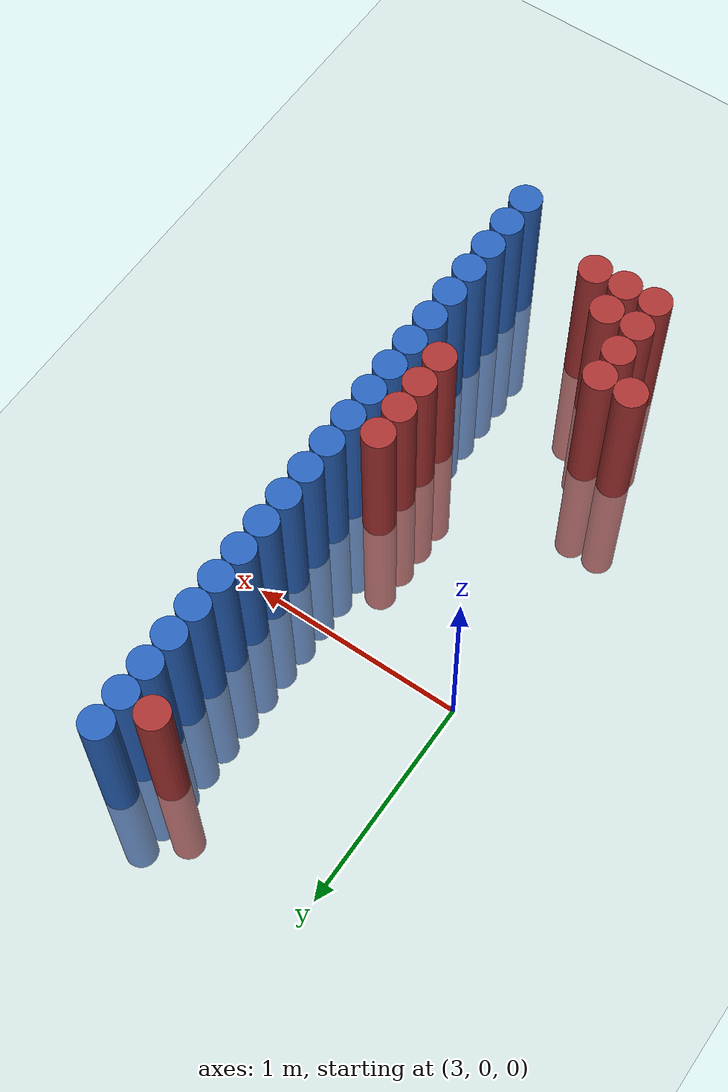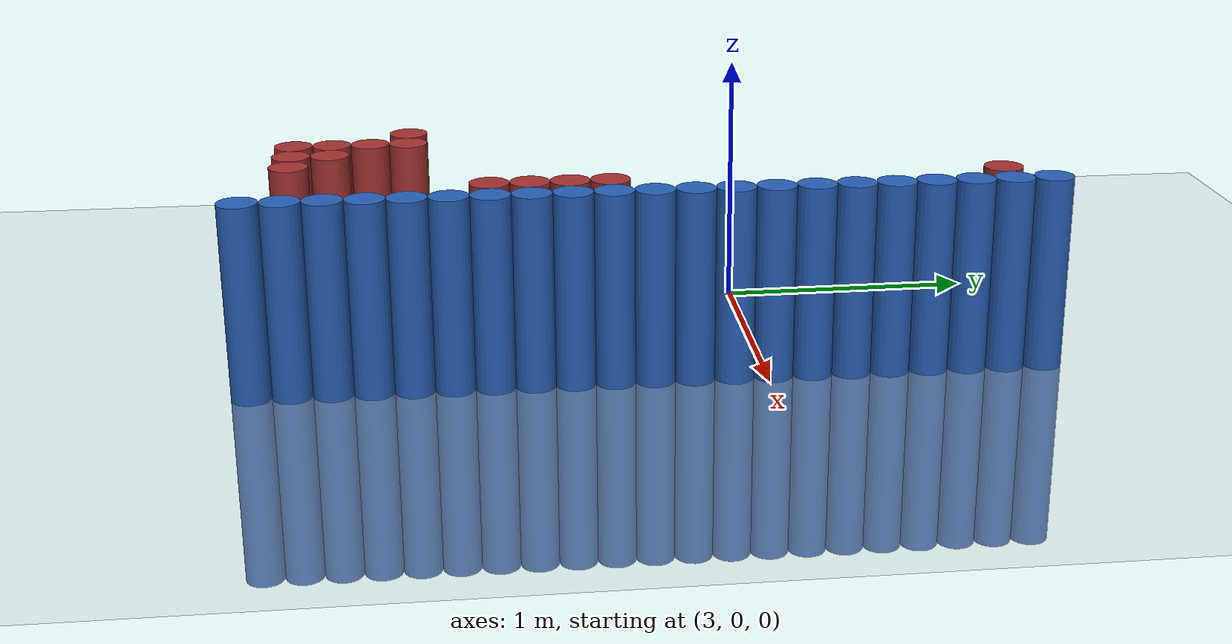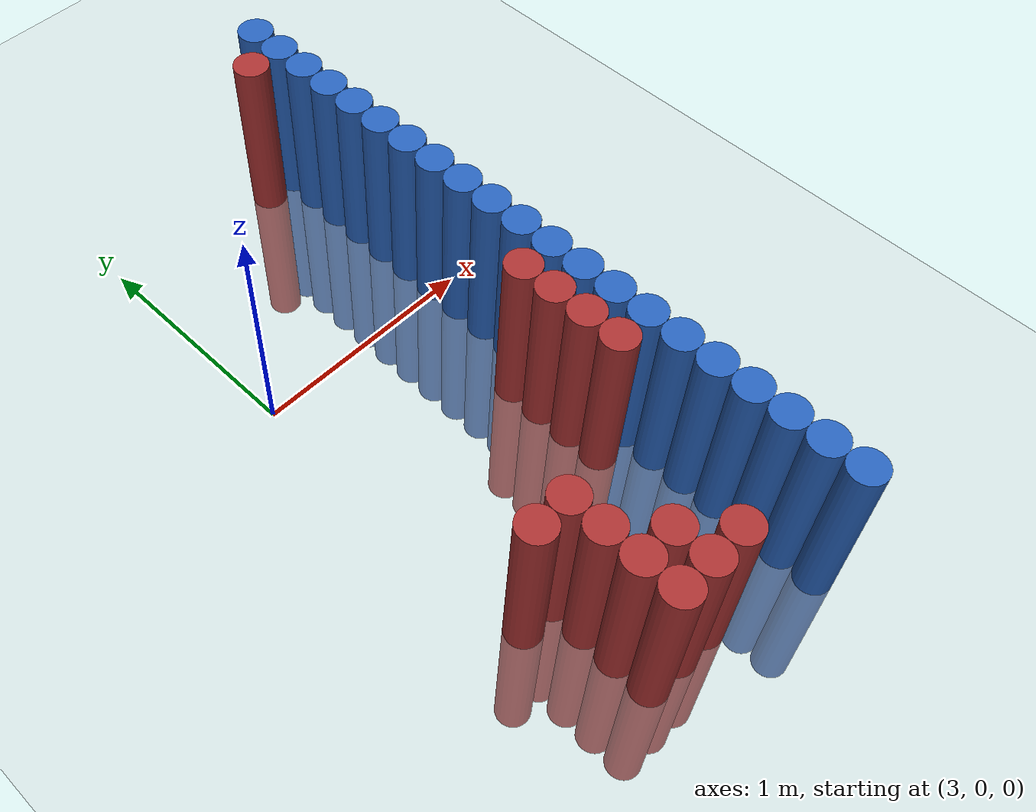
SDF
<sdf version="1.6">
 <world name="default">
  <model name="ground_plane">
   <static>1</static>
   <link name="link">
    <collision name="collision">
     <geometry><plane><normal>0 0 1</normal><size>100 100</size></plane></geometry>
     <surface><friction><ode><mu>100</mu><mu2>50</mu2></ode></friction></surface>
    </collision>
    <visual name="visual">
     <cast_shadows>0</cast_shadows>
     <geometry><plane><normal>0 0 1</normal><size>100 100</size></plane></geometry>
     <material>
      <script><uri>file://media/materials/scripts/gazebo.material</uri><name>Gazebo/Grey</name></script>
     </material>
    </visual>
   </link>
  </model>
  <model name="unit_cylinder_88">
   <static>1</static>
   <pose>3.925000 -1.925000 0.000000 0.000000 0.000000 0.000000</pose>
   <link name="link">
    <inertial>
     <mass>1</mass>
     <inertia><ixx>0.145833</ixx><ixy>0</ixy><ixz>0</ixz><iyy>0.145833</iyy><iyz>0</iyz><izz>0.125</izz></inertia>
    </inertial>
    <collision name="collision">
     <geometry><cylinder><radius>0.075000</radius><length>1.5</length></cylinder></geometry>
    </collision>
    <visual name="visual">
     <geometry><cylinder><radius>0.075000</radius><length>1.5</length></cylinder></geometry>
     <material>
      <ambient>0.152000 0.379000 0.720000 1</ambient>
      <diffuse>0.152000 0.379000 0.720000 1</diffuse>
     </material>
     <material>
      <script><name>Gazebo/Grey</name><uri>file://media/materials/scripts/gazebo.material</uri></script>
     </material>
    </visual>
   </link>
  </model>
  <model name="unit_cylinder_90">
   <static>1</static>
   <pose>3.925000 -1.775000 0.000000 0.000000 0.000000 0.000000</pose>
   <link name="link">
    <inertial>
     <mass>1</mass>
     <inertia><ixx>0.145833</ixx><ixy>0</ixy><ixz>0</ixz><iyy>0.145833</iyy><iyz>0</iyz><izz>0.125</izz></inertia>
    </inertial>
    <collision name="collision">
     <geometry><cylinder><radius>0.075000</radius><length>1.5</length></cylinder></geometry>
    </collision>
    <visual name="visual">
     <geometry><cylinder><radius>0.075000</radius><length>1.5</length></cylinder></geometry>
     <material>
      <ambient>0.152000 0.379000 0.720000 1</ambient>
      <diffuse>0.152000 0.379000 0.720000 1</diffuse>
     </material>
     <material>
      <script><name>Gazebo/Grey</name><uri>file://media/materials/scripts/gazebo.material</uri></script>
     </material>
    </visual>
   </link>
  </model>
  <model name="unit_cylinder_92">
   <static>1</static>
   <pose>3.925000 -1.625000 0.000000 0.000000 0.000000 0.000000</pose>
   <link name="link">
    <inertial>
     <mass>1</mass>
     <inertia><ixx>0.145833</ixx><ixy>0</ixy><ixz>0</ixz><iyy>0.145833</iyy><iyz>0</iyz><izz>0.125</izz></inertia>
    </inertial>
    <collision name="collision">
     <geometry><cylinder><radius>0.075000</radius><length>1.5</length></cylinder></geometry>
    </collision>
    <visual name="visual">
     <geometry><cylinder><radius>0.075000</radius><length>1.5</length></cylinder></geometry>
     <material>
      <ambient>0.152000 0.379000 0.720000 1</ambient>
      <diffuse>0.152000 0.379000 0.720000 1</diffuse>
     </material>
     <material>
      <script><name>Gazebo/Grey</name><uri>file://media/materials/scripts/gazebo.material</uri></script>
     </material>
    </visual>
   </link>
  </model>
  <model name="unit_cylinder_94">
   <static>1</static>
   <pose>3.925000 -1.475000 0.000000 0.000000 0.000000 0.000000</pose>
   <link name="link">
    <inertial>
     <mass>1</mass>
     <inertia><ixx>0.145833</ixx><ixy>0</ixy><ixz>0</ixz><iyy>0.145833</iyy><iyz>0</iyz><izz>0.125</izz></inertia>
    </inertial>
    <collision name="collision">
     <geometry><cylinder><radius>0.075000</radius><length>1.5</length></cylinder></geometry>
    </collision>
    <visual name="visual">
     <geometry><cylinder><radius>0.075000</radius><length>1.5</length></cylinder></geometry>
     <material>
      <ambient>0.152000 0.379000 0.720000 1</ambient>
      <diffuse>0.152000 0.379000 0.720000 1</diffuse>
     </material>
     <material>
      <script><name>Gazebo/Grey</name><uri>file://media/materials/scripts/gazebo.material</uri></script>
     </material>
    </visual>
   </link>
  </model>
  <model name="unit_cylinder_96">
   <static>1</static>
   <pose>3.925000 -1.325000 0.000000 0.000000 0.000000 0.000000</pose>
   <link name="link">
    <inertial>
     <mass>1</mass>
     <inertia><ixx>0.145833</ixx><ixy>0</ixy><ixz>0</ixz><iyy>0.145833</iyy><iyz>0</iyz><izz>0.125</izz></inertia>
    </inertial>
    <collision name="collision">
     <geometry><cylinder><radius>0.075000</radius><length>1.5</length></cylinder></geometry>
    </collision>
    <visual name="visual">
     <geometry><cylinder><radius>0.075000</radius><length>1.5</length></cylinder></geometry>
     <material>
      <ambient>0.152000 0.379000 0.720000 1</ambient>
      <diffuse>0.152000 0.379000 0.720000 1</diffuse>
     </material>
     <material>
      <script><name>Gazebo/Grey</name><uri>file://media/materials/scripts/gazebo.material</uri></script>
     </material>
    </visual>
   </link>
  </model>
  <model name="unit_cylinder_98">
   <static>1</static>
   <pose>3.925000 -1.175000 0.000000 0.000000 0.000000 0.000000</pose>
   <link name="link">
    <inertial>
     <mass>1</mass>
     <inertia><ixx>0.145833</ixx><ixy>0</ixy><ixz>0</ixz><iyy>0.145833</iyy><iyz>0</iyz><izz>0.125</izz></inertia>
    </inertial>
    <collision name="collision">
     <geometry><cylinder><radius>0.075000</radius><length>1.5</length></cylinder></geometry>
    </collision>
    <visual name="visual">
     <geometry><cylinder><radius>0.075000</radius><length>1.5</length></cylinder></geometry>
     <material>
      <ambient>0.152000 0.379000 0.720000 1</ambient>
      <diffuse>0.152000 0.379000 0.720000 1</diffuse>
     </material>
     <material>
      <script><name>Gazebo/Grey</name><uri>file://media/materials/scripts/gazebo.material</uri></script>
     </material>
    </visual>
   </link>
  </model>
  <model name="unit_cylinder_100">
   <static>1</static>
   <pose>3.925000 -1.025000 0.000000 0.000000 0.000000 0.000000</pose>
   <link name="link">
    <inertial>
     <mass>1</mass>
     <inertia><ixx>0.145833</ixx><ixy>0</ixy><ixz>0</ixz><iyy>0.145833</iyy><iyz>0</iyz><izz>0.125</izz></inertia>
    </inertial>
    <collision name="collision">
     <geometry><cylinder><radius>0.075000</radius><length>1.5</length></cylinder></geometry>
    </collision>
    <visual name="visual">
     <geometry><cylinder><radius>0.075000</radius><length>1.5</length></cylinder></geometry>
     <material>
      <ambient>0.152000 0.379000 0.720000 1</ambient>
      <diffuse>0.152000 0.379000 0.720000 1</diffuse>
     </material>
     <material>
      <script><name>Gazebo/Grey</name><uri>file://media/materials/scripts/gazebo.material</uri></script>
     </material>
    </visual>
   </link>
  </model>
  <model name="unit_cylinder_102">
   <static>1</static>
   <pose>3.925000 -0.875000 0.000000 0.000000 0.000000 0.000000</pose>
   <link name="link">
    <inertial>
     <mass>1</mass>
     <inertia><ixx>0.145833</ixx><ixy>0</ixy><ixz>0</ixz><iyy>0.145833</iyy><iyz>0</iyz><izz>0.125</izz></inertia>
    </inertial>
    <collision name="collision">
     <geometry><cylinder><radius>0.075000</radius><length>1.5</length></cylinder></geometry>
    </collision>
    <visual name="visual">
     <geometry><cylinder><radius>0.075000</radius><length>1.5</length></cylinder></geometry>
     <material>
      <ambient>0.152000 0.379000 0.720000 1</ambient>
      <diffuse>0.152000 0.379000 0.720000 1</diffuse>
     </material>
     <material>
      <script><name>Gazebo/Grey</name><uri>file://media/materials/scripts/gazebo.material</uri></script>
     </material>
    </visual>
   </link>
  </model>
  <model name="unit_cylinder_104">
   <static>1</static>
   <pose>3.925000 -0.725000 0.000000 0.000000 0.000000 0.000000</pose>
   <link name="link">
    <inertial>
     <mass>1</mass>
     <inertia><ixx>0.145833</ixx><ixy>0</ixy><ixz>0</ixz><iyy>0.145833</iyy><iyz>0</iyz><izz>0.125</izz></inertia>
    </inertial>
    <collision name="collision">
     <geometry><cylinder><radius>0.075000</radius><length>1.5</length></cylinder></geometry>
    </collision>
    <visual name="visual">
     <geometry><cylinder><radius>0.075000</radius><length>1.5</length></cylinder></geometry>
     <material>
      <ambient>0.152000 0.379000 0.720000 1</ambient>
      <diffuse>0.152000 0.379000 0.720000 1</diffuse>
     </material>
     <material>
      <script><name>Gazebo/Grey</name><uri>file://media/materials/scripts/gazebo.material</uri></script>
     </material>
    </visual>
   </link>
  </model>
  <model name="unit_cylinder_106">
   <static>1</static>
   <pose>3.925000 -0.575000 0.000000 0.000000 0.000000 0.000000</pose>
   <link name="link">
    <inertial>
     <mass>1</mass>
     <inertia><ixx>0.145833</ixx><ixy>0</ixy><ixz>0</ixz><iyy>0.145833</iyy><iyz>0</iyz><izz>0.125</izz></inertia>
    </inertial>
    <collision name="collision">
     <geometry><cylinder><radius>0.075000</radius><length>1.5</length></cylinder></geometry>
    </collision>
    <visual name="visual">
     <geometry><cylinder><radius>0.075000</radius><length>1.5</length></cylinder></geometry>
     <material>
      <ambient>0.152000 0.379000 0.720000 1</ambient>
      <diffuse>0.152000 0.379000 0.720000 1</diffuse>
     </material>
     <material>
      <script><name>Gazebo/Grey</name><uri>file://media/materials/scripts/gazebo.material</uri></script>
     </material>
    </visual>
   </link>
  </model>
  <model name="unit_cylinder_108">
   <static>1</static>
   <pose>3.925000 -0.425000 0.000000 0.000000 0.000000 0.000000</pose>
   <link name="link">
    <inertial>
     <mass>1</mass>
     <inertia><ixx>0.145833</ixx><ixy>0</ixy><ixz>0</ixz><iyy>0.145833</iyy><iyz>0</iyz><izz>0.125</izz></inertia>
    </inertial>
    <collision name="collision">
     <geometry><cylinder><radius>0.075000</radius><length>1.5</length></cylinder></geometry>
    </collision>
    <visual name="visual">
     <geometry><cylinder><radius>0.075000</radius><length>1.5</length></cylinder></geometry>
     <material>
      <ambient>0.152000 0.379000 0.720000 1</ambient>
      <diffuse>0.152000 0.379000 0.720000 1</diffuse>
     </material>
     <material>
      <script><name>Gazebo/Grey</name><uri>file://media/materials/scripts/gazebo.material</uri></script>
     </material>
    </visual>
   </link>
  </model>
  <model name="unit_cylinder_110">
   <static>1</static>
   <pose>3.925000 -0.275000 0.000000 0.000000 0.000000 0.000000</pose>
   <link name="link">
    <inertial>
     <mass>1</mass>
     <inertia><ixx>0.145833</ixx><ixy>0</ixy><ixz>0</ixz><iyy>0.145833</iyy><iyz>0</iyz><izz>0.125</izz></inertia>
    </inertial>
    <collision name="collision">
     <geometry><cylinder><radius>0.075000</radius><length>1.5</length></cylinder></geometry>
    </collision>
    <visual name="visual">
     <geometry><cylinder><radius>0.075000</radius><length>1.5</length></cylinder></geometry>
     <material>
      <ambient>0.152000 0.379000 0.720000 1</ambient>
      <diffuse>0.152000 0.379000 0.720000 1</diffuse>
     </material>
     <material>
      <script><name>Gazebo/Grey</name><uri>file://media/materials/scripts/gazebo.material</uri></script>
     </material>
    </visual>
   </link>
  </model>
  <model name="unit_cylinder_112">
   <static>1</static>
   <pose>3.925000 -0.125000 0.000000 0.000000 0.000000 0.000000</pose>
   <link name="link">
    <inertial>
     <mass>1</mass>
     <inertia><ixx>0.145833</ixx><ixy>0</ixy><ixz>0</ixz><iyy>0.145833</iyy><iyz>0</iyz><izz>0.125</izz></inertia>
    </inertial>
    <collision name="collision">
     <geometry><cylinder><radius>0.075000</radius><length>1.5</length></cylinder></geometry>
    </collision>
    <visual name="visual">
     <geometry><cylinder><radius>0.075000</radius><length>1.5</length></cylinder></geometry>
     <material>
      <ambient>0.152000 0.379000 0.720000 1</ambient>
      <diffuse>0.152000 0.379000 0.720000 1</diffuse>
     </material>
     <material>
      <script><name>Gazebo/Grey</name><uri>file://media/materials/scripts/gazebo.material</uri></script>
     </material>
    </visual>
   </link>
  </model>
  <model name="unit_cylinder_114">
   <static>1</static>
   <pose>3.925000 0.025000 0.000000 0.000000 0.000000 0.000000</pose>
   <link name="link">
    <inertial>
     <mass>1</mass>
     <inertia><ixx>0.145833</ixx><ixy>0</ixy><ixz>0</ixz><iyy>0.145833</iyy><iyz>0</iyz><izz>0.125</izz></inertia>
    </inertial>
    <collision name="collision">
     <geometry><cylinder><radius>0.075000</radius><length>1.5</length></cylinder></geometry>
    </collision>
    <visual name="visual">
     <geometry><cylinder><radius>0.075000</radius><length>1.5</length></cylinder></geometry>
     <material>
      <ambient>0.152000 0.379000 0.720000 1</ambient>
      <diffuse>0.152000 0.379000 0.720000 1</diffuse>
     </material>
     <material>
      <script><name>Gazebo/Grey</name><uri>file://media/materials/scripts/gazebo.material</uri></script>
     </material>
    </visual>
   </link>
  </model>
  <model name="unit_cylinder_116">
   <static>1</static>
   <pose>3.925000 0.175000 0.000000 0.000000 0.000000 0.000000</pose>
   <link name="link">
    <inertial>
     <mass>1</mass>
     <inertia><ixx>0.145833</ixx><ixy>0</ixy><ixz>0</ixz><iyy>0.145833</iyy><iyz>0</iyz><izz>0.125</izz></inertia>
    </inertial>
    <collision name="collision">
     <geometry><cylinder><radius>0.075000</radius><length>1.5</length></cylinder></geometry>
    </collision>
    <visual name="visual">
     <geometry><cylinder><radius>0.075000</radius><length>1.5</length></cylinder></geometry>
     <material>
      <ambient>0.152000 0.379000 0.720000 1</ambient>
      <diffuse>0.152000 0.379000 0.720000 1</diffuse>
     </material>
     <material>
      <script><name>Gazebo/Grey</name><uri>file://media/materials/scripts/gazebo.material</uri></script>
     </material>
    </visual>
   </link>
  </model>
  <model name="unit_cylinder_118">
   <static>1</static>
   <pose>3.925000 0.325000 0.000000 0.000000 0.000000 0.000000</pose>
   <link name="link">
    <inertial>
     <mass>1</mass>
     <inertia><ixx>0.145833</ixx><ixy>0</ixy><ixz>0</ixz><iyy>0.145833</iyy><iyz>0</iyz><izz>0.125</izz></inertia>
    </inertial>
    <collision name="collision">
     <geometry><cylinder><radius>0.075000</radius><length>1.5</length></cylinder></geometry>
    </collision>
    <visual name="visual">
     <geometry><cylinder><radius>0.075000</radius><length>1.5</length></cylinder></geometry>
     <material>
      <ambient>0.152000 0.379000 0.720000 1</ambient>
      <diffuse>0.152000 0.379000 0.720000 1</diffuse>
     </material>
     <material>
      <script><name>Gazebo/Grey</name><uri>file://media/materials/scripts/gazebo.material</uri></script>
     </material>
    </visual>
   </link>
  </model>
  <model name="unit_cylinder_120">
   <static>1</static>
   <pose>3.925000 0.475000 0.000000 0.000000 0.000000 0.000000</pose>
   <link name="link">
    <inertial>
     <mass>1</mass>
     <inertia><ixx>0.145833</ixx><ixy>0</ixy><ixz>0</ixz><iyy>0.145833</iyy><iyz>0</iyz><izz>0.125</izz></inertia>
    </inertial>
    <collision name="collision">
     <geometry><cylinder><radius>0.075000</radius><length>1.5</length></cylinder></geometry>
    </collision>
    <visual name="visual">
     <geometry><cylinder><radius>0.075000</radius><length>1.5</length></cylinder></geometry>
     <material>
      <ambient>0.152000 0.379000 0.720000 1</ambient>
      <diffuse>0.152000 0.379000 0.720000 1</diffuse>
     </material>
     <material>
      <script><name>Gazebo/Grey</name><uri>file://media/materials/scripts/gazebo.material</uri></script>
     </material>
    </visual>
   </link>
  </model>
  <model name="unit_cylinder_122">
   <static>1</static>
   <pose>3.925000 0.625000 0.000000 0.000000 0.000000 0.000000</pose>
   <link name="link">
    <inertial>
     <mass>1</mass>
     <inertia><ixx>0.145833</ixx><ixy>0</ixy><ixz>0</ixz><iyy>0.145833</iyy><iyz>0</iyz><izz>0.125</izz></inertia>
    </inertial>
    <collision name="collision">
     <geometry><cylinder><radius>0.075000</radius><length>1.5</length></cylinder></geometry>
    </collision>
    <visual name="visual">
     <geometry><cylinder><radius>0.075000</radius><length>1.5</length></cylinder></geometry>
     <material>
      <ambient>0.152000 0.379000 0.720000 1</ambient>
      <diffuse>0.152000 0.379000 0.720000 1</diffuse>
     </material>
     <material>
      <script><name>Gazebo/Grey</name><uri>file://media/materials/scripts/gazebo.material</uri></script>
     </material>
    </visual>
   </link>
  </model>
  <model name="unit_cylinder_124">
   <static>1</static>
   <pose>3.925000 0.775000 0.000000 0.000000 0.000000 0.000000</pose>
   <link name="link">
    <inertial>
     <mass>1</mass>
     <inertia><ixx>0.145833</ixx><ixy>0</ixy><ixz>0</ixz><iyy>0.145833</iyy><iyz>0</iyz><izz>0.125</izz></inertia>
    </inertial>
    <collision name="collision">
     <geometry><cylinder><radius>0.075000</radius><length>1.5</length></cylinder></geometry>
    </collision>
    <visual name="visual">
     <geometry><cylinder><radius>0.075000</radius><length>1.5</length></cylinder></geometry>
     <material>
      <ambient>0.152000 0.379000 0.720000 1</ambient>
      <diffuse>0.152000 0.379000 0.720000 1</diffuse>
     </material>
     <material>
      <script><name>Gazebo/Grey</name><uri>file://media/materials/scripts/gazebo.material</uri></script>
     </material>
    </visual>
   </link>
  </model>
  <model name="unit_cylinder_126">
   <static>1</static>
   <pose>3.925000 0.925000 0.000000 0.000000 0.000000 0.000000</pose>
   <link name="link">
    <inertial>
     <mass>1</mass>
     <inertia><ixx>0.145833</ixx><ixy>0</ixy><ixz>0</ixz><iyy>0.145833</iyy><iyz>0</iyz><izz>0.125</izz></inertia>
    </inertial>
    <collision name="collision">
     <geometry><cylinder><radius>0.075000</radius><length>1.5</length></cylinder></geometry>
    </collision>
    <visual name="visual">
     <geometry><cylinder><radius>0.075000</radius><length>1.5</length></cylinder></geometry>
     <material>
      <ambient>0.152000 0.379000 0.720000 1</ambient>
      <diffuse>0.152000 0.379000 0.720000 1</diffuse>
     </material>
     <material>
      <script><name>Gazebo/Grey</name><uri>file://media/materials/scripts/gazebo.material</uri></script>
     </material>
    </visual>
   </link>
  </model>
  <model name="unit_cylinder_128">
   <static>1</static>
   <pose>3.925000 1.075000 0.000000 0.000000 0.000000 0.000000</pose>
   <link name="link">
    <inertial>
     <mass>1</mass>
     <inertia><ixx>0.145833</ixx><ixy>0</ixy><ixz>0</ixz><iyy>0.145833</iyy><iyz>0</iyz><izz>0.125</izz></inertia>
    </inertial>
    <collision name="collision">
     <geometry><cylinder><radius>0.075000</radius><length>1.5</length></cylinder></geometry>
    </collision>
    <visual name="visual">
     <geometry><cylinder><radius>0.075000</radius><length>1.5</length></cylinder></geometry>
     <material>
      <ambient>0.152000 0.379000 0.720000 1</ambient>
      <diffuse>0.152000 0.379000 0.720000 1</diffuse>
     </material>
     <material>
      <script><name>Gazebo/Grey</name><uri>file://media/materials/scripts/gazebo.material</uri></script>
     </material>
    </visual>
   </link>
  </model>
  <model name="unit_cylinder_435">
   <static>1</static>
   <pose>3.025000 -1.325000 0.000000 0.000000 0.000000 0.000000</pose>
   <link name="link">
    <inertial>
     <mass>1</mass>
     <inertia><ixx>0.145833</ixx><ixy>0</ixy><ixz>0</ixz><iyy>0.145833</iyy><iyz>0</iyz><izz>0.125</izz></inertia>
    </inertial>
    <collision name="collision">
     <geometry><cylinder><radius>0.075000</radius><length>1.5</length></cylinder></geometry>
    </collision>
    <visual name="visual">
     <geometry><cylinder><radius>0.075000</radius><length>1.5</length></cylinder></geometry>
     <material>
      <ambient>0.648000 0.192000 0.192000 1</ambient>
      <diffuse>0.648000 0.192000 0.192000 1</diffuse>
     </material>
     <material>
      <script><name>Gazebo/Grey</name><uri>file://media/materials/scripts/gazebo.material</uri></script>
     </material>
    </visual>
   </link>
  </model>
  <model name="unit_cylinder_439">
   <static>1</static>
   <pose>3.175000 -1.775000 0.000000 0.000000 0.000000 0.000000</pose>
   <link name="link">
    <inertial>
     <mass>1</mass>
     <inertia><ixx>0.145833</ixx><ixy>0</ixy><ixz>0</ixz><iyy>0.145833</iyy><iyz>0</iyz><izz>0.125</izz></inertia>
    </inertial>
    <collision name="collision">
     <geometry><cylinder><radius>0.075000</radius><length>1.5</length></cylinder></geometry>
    </collision>
    <visual name="visual">
     <geometry><cylinder><radius>0.075000</radius><length>1.5</length></cylinder></geometry>
     <material>
      <ambient>0.648000 0.192000 0.192000 1</ambient>
      <diffuse>0.648000 0.192000 0.192000 1</diffuse>
     </material>
     <material>
      <script><name>Gazebo/Grey</name><uri>file://media/materials/scripts/gazebo.material</uri></script>
     </material>
    </visual>
   </link>
  </model>
  <model name="unit_cylinder_440">
   <static>1</static>
   <pose>3.175000 -1.625000 0.000000 0.000000 0.000000 0.000000</pose>
   <link name="link">
    <inertial>
     <mass>1</mass>
     <inertia><ixx>0.145833</ixx><ixy>0</ixy><ixz>0</ixz><iyy>0.145833</iyy><iyz>0</iyz><izz>0.125</izz></inertia>
    </inertial>
    <collision name="collision">
     <geometry><cylinder><radius>0.075000</radius><length>1.5</length></cylinder></geometry>
    </collision>
    <visual name="visual">
     <geometry><cylinder><radius>0.075000</radius><length>1.5</length></cylinder></geometry>
     <material>
      <ambient>0.648000 0.192000 0.192000 1</ambient>
      <diffuse>0.648000 0.192000 0.192000 1</diffuse>
     </material>
     <material>
      <script><name>Gazebo/Grey</name><uri>file://media/materials/scripts/gazebo.material</uri></script>
     </material>
    </visual>
   </link>
  </model>
  <model name="unit_cylinder_441">
   <static>1</static>
   <pose>3.175000 -1.475000 0.000000 0.000000 0.000000 0.000000</pose>
   <link name="link">
    <inertial>
     <mass>1</mass>
     <inertia><ixx>0.145833</ixx><ixy>0</ixy><ixz>0</ixz><iyy>0.145833</iyy><iyz>0</iyz><izz>0.125</izz></inertia>
    </inertial>
    <collision name="collision">
     <geometry><cylinder><radius>0.075000</radius><length>1.5</length></cylinder></geometry>
    </collision>
    <visual name="visual">
     <geometry><cylinder><radius>0.075000</radius><length>1.5</length></cylinder></geometry>
     <material>
      <ambient>0.648000 0.192000 0.192000 1</ambient>
      <diffuse>0.648000 0.192000 0.192000 1</diffuse>
     </material>
     <material>
      <script><name>Gazebo/Grey</name><uri>file://media/materials/scripts/gazebo.material</uri></script>
     </material>
    </visual>
   </link>
  </model>
  <model name="unit_cylinder_442">
   <static>1</static>
   <pose>3.175000 -1.325000 0.000000 0.000000 0.000000 0.000000</pose>
   <link name="link">
    <inertial>
     <mass>1</mass>
     <inertia><ixx>0.145833</ixx><ixy>0</ixy><ixz>0</ixz><iyy>0.145833</iyy><iyz>0</iyz><izz>0.125</izz></inertia>
    </inertial>
    <collision name="collision">
     <geometry><cylinder><radius>0.075000</radius><length>1.5</length></cylinder></geometry>
    </collision>
    <visual name="visual">
     <geometry><cylinder><radius>0.075000</radius><length>1.5</length></cylinder></geometry>
     <material>
      <ambient>0.648000 0.192000 0.192000 1</ambient>
      <diffuse>0.648000 0.192000 0.192000 1</diffuse>
     </material>
     <material>
      <script><name>Gazebo/Grey</name><uri>file://media/materials/scripts/gazebo.material</uri></script>
     </material>
    </visual>
   </link>
  </model>
  <model name="unit_cylinder_449">
   <static>1</static>
   <pose>3.325000 -1.775000 0.000000 0.000000 0.000000 0.000000</pose>
   <link name="link">
    <inertial>
     <mass>1</mass>
     <inertia><ixx>0.145833</ixx><ixy>0</ixy><ixz>0</ixz><iyy>0.145833</iyy><iyz>0</iyz><izz>0.125</izz></inertia>
    </inertial>
    <collision name="collision">
     <geometry><cylinder><radius>0.075000</radius><length>1.5</length></cylinder></geometry>
    </collision>
    <visual name="visual">
     <geometry><cylinder><radius>0.075000</radius><length>1.5</length></cylinder></geometry>
     <material>
      <ambient>0.648000 0.192000 0.192000 1</ambient>
      <diffuse>0.648000 0.192000 0.192000 1</diffuse>
     </material>
     <material>
      <script><name>Gazebo/Grey</name><uri>file://media/materials/scripts/gazebo.material</uri></script>
     </material>
    </visual>
   </link>
  </model>
  <model name="unit_cylinder_450">
   <static>1</static>
   <pose>3.325000 -1.625000 0.000000 0.000000 0.000000 0.000000</pose>
   <link name="link">
    <inertial>
     <mass>1</mass>
     <inertia><ixx>0.145833</ixx><ixy>0</ixy><ixz>0</ixz><iyy>0.145833</iyy><iyz>0</iyz><izz>0.125</izz></inertia>
    </inertial>
    <collision name="collision">
     <geometry><cylinder><radius>0.075000</radius><length>1.5</length></cylinder></geometry>
    </collision>
    <visual name="visual">
     <geometry><cylinder><radius>0.075000</radius><length>1.5</length></cylinder></geometry>
     <material>
      <ambient>0.648000 0.192000 0.192000 1</ambient>
      <diffuse>0.648000 0.192000 0.192000 1</diffuse>
     </material>
     <material>
      <script><name>Gazebo/Grey</name><uri>file://media/materials/scripts/gazebo.material</uri></script>
     </material>
    </visual>
   </link>
  </model>
  <model name="unit_cylinder_456">
   <static>1</static>
   <pose>3.475000 -1.775000 0.000000 0.000000 0.000000 0.000000</pose>
   <link name="link">
    <inertial>
     <mass>1</mass>
     <inertia><ixx>0.145833</ixx><ixy>0</ixy><ixz>0</ixz><iyy>0.145833</iyy><iyz>0</iyz><izz>0.125</izz></inertia>
    </inertial>
    <collision name="collision">
     <geometry><cylinder><radius>0.075000</radius><length>1.5</length></cylinder></geometry>
    </collision>
    <visual name="visual">
     <geometry><cylinder><radius>0.075000</radius><length>1.5</length></cylinder></geometry>
     <material>
      <ambient>0.648000 0.192000 0.192000 1</ambient>
      <diffuse>0.648000 0.192000 0.192000 1</diffuse>
     </material>
     <material>
      <script><name>Gazebo/Grey</name><uri>file://media/materials/scripts/gazebo.material</uri></script>
     </material>
    </visual>
   </link>
  </model>
  <model name="unit_cylinder_468">
   <static>1</static>
   <pose>3.775000 -1.025000 0.000000 0.000000 0.000000 0.000000</pose>
   <link name="link">
    <inertial>
     <mass>1</mass>
     <inertia><ixx>0.145833</ixx><ixy>0</ixy><ixz>0</ixz><iyy>0.145833</iyy><iyz>0</iyz><izz>0.125</izz></inertia>
    </inertial>
    <collision name="collision">
     <geometry><cylinder><radius>0.075000</radius><length>1.5</length></cylinder></geometry>
    </collision>
    <visual name="visual">
     <geometry><cylinder><radius>0.075000</radius><length>1.5</length></cylinder></geometry>
     <material>
      <ambient>0.648000 0.192000 0.192000 1</ambient>
      <diffuse>0.648000 0.192000 0.192000 1</diffuse>
     </material>
     <material>
      <script><name>Gazebo/Grey</name><uri>file://media/materials/scripts/gazebo.material</uri></script>
     </material>
    </visual>
   </link>
  </model>
  <model name="unit_cylinder_469">
   <static>1</static>
   <pose>3.775000 -0.875000 0.000000 0.000000 0.000000 0.000000</pose>
   <link name="link">
    <inertial>
     <mass>1</mass>
     <inertia><ixx>0.145833</ixx><ixy>0</ixy><ixz>0</ixz><iyy>0.145833</iyy><iyz>0</iyz><izz>0.125</izz></inertia>
    </inertial>
    <collision name="collision">
     <geometry><cylinder><radius>0.075000</radius><length>1.5</length></cylinder></geometry>
    </collision>
    <visual name="visual">
     <geometry><cylinder><radius>0.075000</radius><length>1.5</length></cylinder></geometry>
     <material>
      <ambient>0.648000 0.192000 0.192000 1</ambient>
      <diffuse>0.648000 0.192000 0.192000 1</diffuse>
     </material>
     <material>
      <script><name>Gazebo/Grey</name><uri>file://media/materials/scripts/gazebo.material</uri></script>
     </material>
    </visual>
   </link>
  </model>
  <model name="unit_cylinder_470">
   <static>1</static>
   <pose>3.775000 -0.725000 0.000000 0.000000 0.000000 0.000000</pose>
   <link name="link">
    <inertial>
     <mass>1</mass>
     <inertia><ixx>0.145833</ixx><ixy>0</ixy><ixz>0</ixz><iyy>0.145833</iyy><iyz>0</iyz><izz>0.125</izz></inertia>
    </inertial>
    <collision name="collision">
     <geometry><cylinder><radius>0.075000</radius><length>1.5</length></cylinder></geometry>
    </collision>
    <visual name="visual">
     <geometry><cylinder><radius>0.075000</radius><length>1.5</length></cylinder></geometry>
     <material>
      <ambient>0.648000 0.192000 0.192000 1</ambient>
      <diffuse>0.648000 0.192000 0.192000 1</diffuse>
     </material>
     <material>
      <script><name>Gazebo/Grey</name><uri>file://media/materials/scripts/gazebo.material</uri></script>
     </material>
    </visual>
   </link>
  </model>
  <model name="unit_cylinder_471">
   <static>1</static>
   <pose>3.775000 -0.575000 0.000000 0.000000 0.000000 0.000000</pose>
   <link name="link">
    <inertial>
     <mass>1</mass>
     <inertia><ixx>0.145833</ixx><ixy>0</ixy><ixz>0</ixz><iyy>0.145833</iyy><iyz>0</iyz><izz>0.125</izz></inertia>
    </inertial>
    <collision name="collision">
     <geometry><cylinder><radius>0.075000</radius><length>1.5</length></cylinder></geometry>
    </collision>
    <visual name="visual">
     <geometry><cylinder><radius>0.075000</radius><length>1.5</length></cylinder></geometry>
     <material>
      <ambient>0.648000 0.192000 0.192000 1</ambient>
      <diffuse>0.648000 0.192000 0.192000 1</diffuse>
     </material>
     <material>
      <script><name>Gazebo/Grey</name><uri>file://media/materials/scripts/gazebo.material</uri></script>
     </material>
    </visual>
   </link>
  </model>
  <model name="unit_cylinder_472">
   <static>1</static>
   <pose>3.775000 0.925000 0.000000 0.000000 0.000000 0.000000</pose>
   <link name="link">
    <inertial>
     <mass>1</mass>
     <inertia><ixx>0.145833</ixx><ixy>0</ixy><ixz>0</ixz><iyy>0.145833</iyy><iyz>0</iyz><izz>0.125</izz></inertia>
    </inertial>
    <collision name="collision">
     <geometry><cylinder><radius>0.075000</radius><length>1.5</length></cylinder></geometry>
    </collision>
    <visual name="visual">
     <geometry><cylinder><radius>0.075000</radius><length>1.5</length></cylinder></geometry>
     <material>
      <ambient>0.648000 0.192000 0.192000 1</ambient>
      <diffuse>0.648000 0.192000 0.192000 1</diffuse>
     </material>
     <material>
      <script><name>Gazebo/Grey</name><uri>file://media/materials/scripts/gazebo.material</uri></script>
     </material>
    </visual>
   </link>
  </model>
  <model name="unit_cylinder_487">
   <static>1</static>
   <pose>3.925000 -1.925000 0.000000 0.000000 0.000000 0.000000</pose>
   <link name="link">
    <inertial>
     <mass>1</mass>
     <inertia><ixx>0.145833</ixx><ixy>0</ixy><ixz>0</ixz><iyy>0.145833</iyy><iyz>0</iyz><izz>0.125</izz></inertia>
    </inertial>
    <collision name="collision">
     <geometry><cylinder><radius>0.075000</radius><length>1.5</length></cylinder></geometry>
    </collision>
    <visual name="visual">
     <geometry><cylinder><radius>0.075000</radius><length>1.5</length></cylinder></geometry>
     <material>
      <ambient>0.152000 0.379000 0.720000 1</ambient>
      <diffuse>0.152000 0.379000 0.720000 1</diffuse>
     </material>
     <material>
      <script><name>Gazebo/Grey</name><uri>file://media/materials/scripts/gazebo.material</uri></script>
     </material>
    </visual>
   </link>
  </model>
  <model name="unit_cylinder_488">
   <static>1</static>
   <pose>3.925000 -1.775000 0.000000 0.000000 0.000000 0.000000</pose>
   <link name="link">
    <inertial>
     <mass>1</mass>
     <inertia><ixx>0.145833</ixx><ixy>0</ixy><ixz>0</ixz><iyy>0.145833</iyy><iyz>0</iyz><izz>0.125</izz></inertia>
    </inertial>
    <collision name="collision">
     <geometry><cylinder><radius>0.075000</radius><length>1.5</length></cylinder></geometry>
    </collision>
    <visual name="visual">
     <geometry><cylinder><radius>0.075000</radius><length>1.5</length></cylinder></geometry>
     <material>
      <ambient>0.152000 0.379000 0.720000 1</ambient>
      <diffuse>0.152000 0.379000 0.720000 1</diffuse>
     </material>
     <material>
      <script><name>Gazebo/Grey</name><uri>file://media/materials/scripts/gazebo.material</uri></script>
     </material>
    </visual>
   </link>
  </model>
  <model name="unit_cylinder_489">
   <static>1</static>
   <pose>3.925000 -1.625000 0.000000 0.000000 0.000000 0.000000</pose>
   <link name="link">
    <inertial>
     <mass>1</mass>
     <inertia><ixx>0.145833</ixx><ixy>0</ixy><ixz>0</ixz><iyy>0.145833</iyy><iyz>0</iyz><izz>0.125</izz></inertia>
    </inertial>
    <collision name="collision">
     <geometry><cylinder><radius>0.075000</radius><length>1.5</length></cylinder></geometry>
    </collision>
    <visual name="visual">
     <geometry><cylinder><radius>0.075000</radius><length>1.5</length></cylinder></geometry>
     <material>
      <ambient>0.152000 0.379000 0.720000 1</ambient>
      <diffuse>0.152000 0.379000 0.720000 1</diffuse>
     </material>
     <material>
      <script><name>Gazebo/Grey</name><uri>file://media/materials/scripts/gazebo.material</uri></script>
     </material>
    </visual>
   </link>
  </model>
  <model name="unit_cylinder_490">
   <static>1</static>
   <pose>3.925000 -1.475000 0.000000 0.000000 0.000000 0.000000</pose>
   <link name="link">
    <inertial>
     <mass>1</mass>
     <inertia><ixx>0.145833</ixx><ixy>0</ixy><ixz>0</ixz><iyy>0.145833</iyy><iyz>0</iyz><izz>0.125</izz></inertia>
    </inertial>
    <collision name="collision">
     <geometry><cylinder><radius>0.075000</radius><length>1.5</length></cylinder></geometry>
    </collision>
    <visual name="visual">
     <geometry><cylinder><radius>0.075000</radius><length>1.5</length></cylinder></geometry>
     <material>
      <ambient>0.152000 0.379000 0.720000 1</ambient>
      <diffuse>0.152000 0.379000 0.720000 1</diffuse>
     </material>
     <material>
      <script><name>Gazebo/Grey</name><uri>file://media/materials/scripts/gazebo.material</uri></script>
     </material>
    </visual>
   </link>
  </model>
  <model name="unit_cylinder_491">
   <static>1</static>
   <pose>3.925000 -1.325000 0.000000 0.000000 0.000000 0.000000</pose>
   <link name="link">
    <inertial>
     <mass>1</mass>
     <inertia><ixx>0.145833</ixx><ixy>0</ixy><ixz>0</ixz><iyy>0.145833</iyy><iyz>0</iyz><izz>0.125</izz></inertia>
    </inertial>
    <collision name="collision">
     <geometry><cylinder><radius>0.075000</radius><length>1.5</length></cylinder></geometry>
    </collision>
    <visual name="visual">
     <geometry><cylinder><radius>0.075000</radius><length>1.5</length></cylinder></geometry>
     <material>
      <ambient>0.152000 0.379000 0.720000 1</ambient>
      <diffuse>0.152000 0.379000 0.720000 1</diffuse>
     </material>
     <material>
      <script><name>Gazebo/Grey</name><uri>file://media/materials/scripts/gazebo.material</uri></script>
     </material>
    </visual>
   </link>
  </model>
  <model name="unit_cylinder_492">
   <static>1</static>
   <pose>3.925000 -1.175000 0.000000 0.000000 0.000000 0.000000</pose>
   <link name="link">
    <inertial>
     <mass>1</mass>
     <inertia><ixx>0.145833</ixx><ixy>0</ixy><ixz>0</ixz><iyy>0.145833</iyy><iyz>0</iyz><izz>0.125</izz></inertia>
    </inertial>
    <collision name="collision">
     <geometry><cylinder><radius>0.075000</radius><length>1.5</length></cylinder></geometry>
    </collision>
    <visual name="visual">
     <geometry><cylinder><radius>0.075000</radius><length>1.5</length></cylinder></geometry>
     <material>
      <ambient>0.152000 0.379000 0.720000 1</ambient>
      <diffuse>0.152000 0.379000 0.720000 1</diffuse>
     </material>
     <material>
      <script><name>Gazebo/Grey</name><uri>file://media/materials/scripts/gazebo.material</uri></script>
     </material>
    </visual>
   </link>
  </model>
  <model name="unit_cylinder_493">
   <static>1</static>
   <pose>3.925000 -1.025000 0.000000 0.000000 0.000000 0.000000</pose>
   <link name="link">
    <inertial>
     <mass>1</mass>
     <inertia><ixx>0.145833</ixx><ixy>0</ixy><ixz>0</ixz><iyy>0.145833</iyy><iyz>0</iyz><izz>0.125</izz></inertia>
    </inertial>
    <collision name="collision">
     <geometry><cylinder><radius>0.075000</radius><length>1.5</length></cylinder></geometry>
    </collision>
    <visual name="visual">
     <geometry><cylinder><radius>0.075000</radius><length>1.5</length></cylinder></geometry>
     <material>
      <ambient>0.152000 0.379000 0.720000 1</ambient>
      <diffuse>0.152000 0.379000 0.720000 1</diffuse>
     </material>
     <material>
      <script><name>Gazebo/Grey</name><uri>file://media/materials/scripts/gazebo.material</uri></script>
     </material>
    </visual>
   </link>
  </model>
  <model name="unit_cylinder_494">
   <static>1</static>
   <pose>3.925000 -0.875000 0.000000 0.000000 0.000000 0.000000</pose>
   <link name="link">
    <inertial>
     <mass>1</mass>
     <inertia><ixx>0.145833</ixx><ixy>0</ixy><ixz>0</ixz><iyy>0.145833</iyy><iyz>0</iyz><izz>0.125</izz></inertia>
    </inertial>
    <collision name="collision">
     <geometry><cylinder><radius>0.075000</radius><length>1.5</length></cylinder></geometry>
    </collision>
    <visual name="visual">
     <geometry><cylinder><radius>0.075000</radius><length>1.5</length></cylinder></geometry>
     <material>
      <ambient>0.152000 0.379000 0.720000 1</ambient>
      <diffuse>0.152000 0.379000 0.720000 1</diffuse>
     </material>
     <material>
      <script><name>Gazebo/Grey</name><uri>file://media/materials/scripts/gazebo.material</uri></script>
     </material>
    </visual>
   </link>
  </model>
  <model name="unit_cylinder_495">
   <static>1</static>
   <pose>3.925000 -0.725000 0.000000 0.000000 0.000000 0.000000</pose>
   <link name="link">
    <inertial>
     <mass>1</mass>
     <inertia><ixx>0.145833</ixx><ixy>0</ixy><ixz>0</ixz><iyy>0.145833</iyy><iyz>0</iyz><izz>0.125</izz></inertia>
    </inertial>
    <collision name="collision">
     <geometry><cylinder><radius>0.075000</radius><length>1.5</length></cylinder></geometry>
    </collision>
    <visual name="visual">
     <geometry><cylinder><radius>0.075000</radius><length>1.5</length></cylinder></geometry>
     <material>
      <ambient>0.152000 0.379000 0.720000 1</ambient>
      <diffuse>0.152000 0.379000 0.720000 1</diffuse>
     </material>
     <material>
      <script><name>Gazebo/Grey</name><uri>file://media/materials/scripts/gazebo.material</uri></script>
     </material>
    </visual>
   </link>
  </model>
  <model name="unit_cylinder_496">
   <static>1</static>
   <pose>3.925000 -0.575000 0.000000 0.000000 0.000000 0.000000</pose>
   <link name="link">
    <inertial>
     <mass>1</mass>
     <inertia><ixx>0.145833</ixx><ixy>0</ixy><ixz>0</ixz><iyy>0.145833</iyy><iyz>0</iyz><izz>0.125</izz></inertia>
    </inertial>
    <collision name="collision">
     <geometry><cylinder><radius>0.075000</radius><length>1.5</length></cylinder></geometry>
    </collision>
    <visual name="visual">
     <geometry><cylinder><radius>0.075000</radius><length>1.5</length></cylinder></geometry>
     <material>
      <ambient>0.152000 0.379000 0.720000 1</ambient>
      <diffuse>0.152000 0.379000 0.720000 1</diffuse>
     </material>
     <material>
      <script><name>Gazebo/Grey</name><uri>file://media/materials/scripts/gazebo.material</uri></script>
     </material>
    </visual>
   </link>
  </model>
  <model name="unit_cylinder_497">
   <static>1</static>
   <pose>3.925000 -0.425000 0.000000 0.000000 0.000000 0.000000</pose>
   <link name="link">
    <inertial>
     <mass>1</mass>
     <inertia><ixx>0.145833</ixx><ixy>0</ixy><ixz>0</ixz><iyy>0.145833</iyy><iyz>0</iyz><izz>0.125</izz></inertia>
    </inertial>
    <collision name="collision">
     <geometry><cylinder><radius>0.075000</radius><length>1.5</length></cylinder></geometry>
    </collision>
    <visual name="visual">
     <geometry><cylinder><radius>0.075000</radius><length>1.5</length></cylinder></geometry>
     <material>
      <ambient>0.152000 0.379000 0.720000 1</ambient>
      <diffuse>0.152000 0.379000 0.720000 1</diffuse>
     </material>
     <material>
      <script><name>Gazebo/Grey</name><uri>file://media/materials/scripts/gazebo.material</uri></script>
     </material>
    </visual>
   </link>
  </model>
  <model name="unit_cylinder_498">
   <static>1</static>
   <pose>3.925000 -0.275000 0.000000 0.000000 0.000000 0.000000</pose>
   <link name="link">
    <inertial>
     <mass>1</mass>
     <inertia><ixx>0.145833</ixx><ixy>0</ixy><ixz>0</ixz><iyy>0.145833</iyy><iyz>0</iyz><izz>0.125</izz></inertia>
    </inertial>
    <collision name="collision">
     <geometry><cylinder><radius>0.075000</radius><length>1.5</length></cylinder></geometry>
    </collision>
    <visual name="visual">
     <geometry><cylinder><radius>0.075000</radius><length>1.5</length></cylinder></geometry>
     <material>
      <ambient>0.152000 0.379000 0.720000 1</ambient>
      <diffuse>0.152000 0.379000 0.720000 1</diffuse>
     </material>
     <material>
      <script><name>Gazebo/Grey</name><uri>file://media/materials/scripts/gazebo.material</uri></script>
     </material>
    </visual>
   </link>
  </model>
  <model name="unit_cylinder_499">
   <static>1</static>
   <pose>3.925000 -0.125000 0.000000 0.000000 0.000000 0.000000</pose>
   <link name="link">
    <inertial>
     <mass>1</mass>
     <inertia><ixx>0.145833</ixx><ixy>0</ixy><ixz>0</ixz><iyy>0.145833</iyy><iyz>0</iyz><izz>0.125</izz></inertia>
    </inertial>
    <collision name="collision">
     <geometry><cylinder><radius>0.075000</radius><length>1.5</length></cylinder></geometry>
    </collision>
    <visual name="visual">
     <geometry><cylinder><radius>0.075000</radius><length>1.5</length></cylinder></geometry>
     <material>
      <ambient>0.152000 0.379000 0.720000 1</ambient>
      <diffuse>0.152000 0.379000 0.720000 1</diffuse>
     </material>
     <material>
      <script><name>Gazebo/Grey</name><uri>file://media/materials/scripts/gazebo.material</uri></script>
     </material>
    </visual>
   </link>
  </model>
  <model name="unit_cylinder_500">
   <static>1</static>
   <pose>3.925000 0.025000 0.000000 0.000000 0.000000 0.000000</pose>
   <link name="link">
    <inertial>
     <mass>1</mass>
     <inertia><ixx>0.145833</ixx><ixy>0</ixy><ixz>0</ixz><iyy>0.145833</iyy><iyz>0</iyz><izz>0.125</izz></inertia>
    </inertial>
    <collision name="collision">
     <geometry><cylinder><radius>0.075000</radius><length>1.5</length></cylinder></geometry>
    </collision>
    <visual name="visual">
     <geometry><cylinder><radius>0.075000</radius><length>1.5</length></cylinder></geometry>
     <material>
      <ambient>0.152000 0.379000 0.720000 1</ambient>
      <diffuse>0.152000 0.379000 0.720000 1</diffuse>
     </material>
     <material>
      <script><name>Gazebo/Grey</name><uri>file://media/materials/scripts/gazebo.material</uri></script>
     </material>
    </visual>
   </link>
  </model>
  <model name="unit_cylinder_501">
   <static>1</static>
   <pose>3.925000 0.175000 0.000000 0.000000 0.000000 0.000000</pose>
   <link name="link">
    <inertial>
     <mass>1</mass>
     <inertia><ixx>0.145833</ixx><ixy>0</ixy><ixz>0</ixz><iyy>0.145833</iyy><iyz>0</iyz><izz>0.125</izz></inertia>
    </inertial>
    <collision name="collision">
     <geometry><cylinder><radius>0.075000</radius><length>1.5</length></cylinder></geometry>
    </collision>
    <visual name="visual">
     <geometry><cylinder><radius>0.075000</radius><length>1.5</length></cylinder></geometry>
     <material>
      <ambient>0.152000 0.379000 0.720000 1</ambient>
      <diffuse>0.152000 0.379000 0.720000 1</diffuse>
     </material>
     <material>
      <script><name>Gazebo/Grey</name><uri>file://media/materials/scripts/gazebo.material</uri></script>
     </material>
    </visual>
   </link>
  </model>
  <model name="unit_cylinder_502">
   <static>1</static>
   <pose>3.925000 0.325000 0.000000 0.000000 0.000000 0.000000</pose>
   <link name="link">
    <inertial>
     <mass>1</mass>
     <inertia><ixx>0.145833</ixx><ixy>0</ixy><ixz>0</ixz><iyy>0.145833</iyy><iyz>0</iyz><izz>0.125</izz></inertia>
    </inertial>
    <collision name="collision">
     <geometry><cylinder><radius>0.075000</radius><length>1.5</length></cylinder></geometry>
    </collision>
    <visual name="visual">
     <geometry><cylinder><radius>0.075000</radius><length>1.5</length></cylinder></geometry>
     <material>
      <ambient>0.152000 0.379000 0.720000 1</ambient>
      <diffuse>0.152000 0.379000 0.720000 1</diffuse>
     </material>
     <material>
      <script><name>Gazebo/Grey</name><uri>file://media/materials/scripts/gazebo.material</uri></script>
     </material>
    </visual>
   </link>
  </model>
  <model name="unit_cylinder_503">
   <static>1</static>
   <pose>3.925000 0.475000 0.000000 0.000000 0.000000 0.000000</pose>
   <link name="link">
    <inertial>
     <mass>1</mass>
     <inertia><ixx>0.145833</ixx><ixy>0</ixy><ixz>0</ixz><iyy>0.145833</iyy><iyz>0</iyz><izz>0.125</izz></inertia>
    </inertial>
    <collision name="collision">
     <geometry><cylinder><radius>0.075000</radius><length>1.5</length></cylinder></geometry>
    </collision>
    <visual name="visual">
     <geometry><cylinder><radius>0.075000</radius><length>1.5</length></cylinder></geometry>
     <material>
      <ambient>0.152000 0.379000 0.720000 1</ambient>
      <diffuse>0.152000 0.379000 0.720000 1</diffuse>
     </material>
     <material>
      <script><name>Gazebo/Grey</name><uri>file://media/materials/scripts/gazebo.material</uri></script>
     </material>
    </visual>
   </link>
  </model>
  <model name="unit_cylinder_504">
   <static>1</static>
   <pose>3.925000 0.625000 0.000000 0.000000 0.000000 0.000000</pose>
   <link name="link">
    <inertial>
     <mass>1</mass>
     <inertia><ixx>0.145833</ixx><ixy>0</ixy><ixz>0</ixz><iyy>0.145833</iyy><iyz>0</iyz><izz>0.125</izz></inertia>
    </inertial>
    <collision name="collision">
     <geometry><cylinder><radius>0.075000</radius><length>1.5</length></cylinder></geometry>
    </collision>
    <visual name="visual">
     <geometry><cylinder><radius>0.075000</radius><length>1.5</length></cylinder></geometry>
     <material>
      <ambient>0.152000 0.379000 0.720000 1</ambient>
      <diffuse>0.152000 0.379000 0.720000 1</diffuse>
     </material>
     <material>
      <script><name>Gazebo/Grey</name><uri>file://media/materials/scripts/gazebo.material</uri></script>
     </material>
    </visual>
   </link>
  </model>
  <model name="unit_cylinder_505">
   <static>1</static>
   <pose>3.925000 0.775000 0.000000 0.000000 0.000000 0.000000</pose>
   <link name="link">
    <inertial>
     <mass>1</mass>
     <inertia><ixx>0.145833</ixx><ixy>0</ixy><ixz>0</ixz><iyy>0.145833</iyy><iyz>0</iyz><izz>0.125</izz></inertia>
    </inertial>
    <collision name="collision">
     <geometry><cylinder><radius>0.075000</radius><length>1.5</length></cylinder></geometry>
    </collision>
    <visual name="visual">
     <geometry><cylinder><radius>0.075000</radius><length>1.5</length></cylinder></geometry>
     <material>
      <ambient>0.152000 0.379000 0.720000 1</ambient>
      <diffuse>0.152000 0.379000 0.720000 1</diffuse>
     </material>
     <material>
      <script><name>Gazebo/Grey</name><uri>file://media/materials/scripts/gazebo.material</uri></script>
     </material>
    </visual>
   </link>
  </model>
  <model name="unit_cylinder_506">
   <static>1</static>
   <pose>3.925000 0.925000 0.000000 0.000000 0.000000 0.000000</pose>
   <link name="link">
    <inertial>
     <mass>1</mass>
     <inertia><ixx>0.145833</ixx><ixy>0</ixy><ixz>0</ixz><iyy>0.145833</iyy><iyz>0</iyz><izz>0.125</izz></inertia>
    </inertial>
    <collision name="collision">
     <geometry><cylinder><radius>0.075000</radius><length>1.5</length></cylinder></geometry>
    </collision>
    <visual name="visual">
     <geometry><cylinder><radius>0.075000</radius><length>1.5</length></cylinder></geometry>
     <material>
      <ambient>0.152000 0.379000 0.720000 1</ambient>
      <diffuse>0.152000 0.379000 0.720000 1</diffuse>
     </material>
     <material>
      <script><name>Gazebo/Grey</name><uri>file://media/materials/scripts/gazebo.material</uri></script>
     </material>
    </visual>
   </link>
  </model>
 </world>
</sdf>
